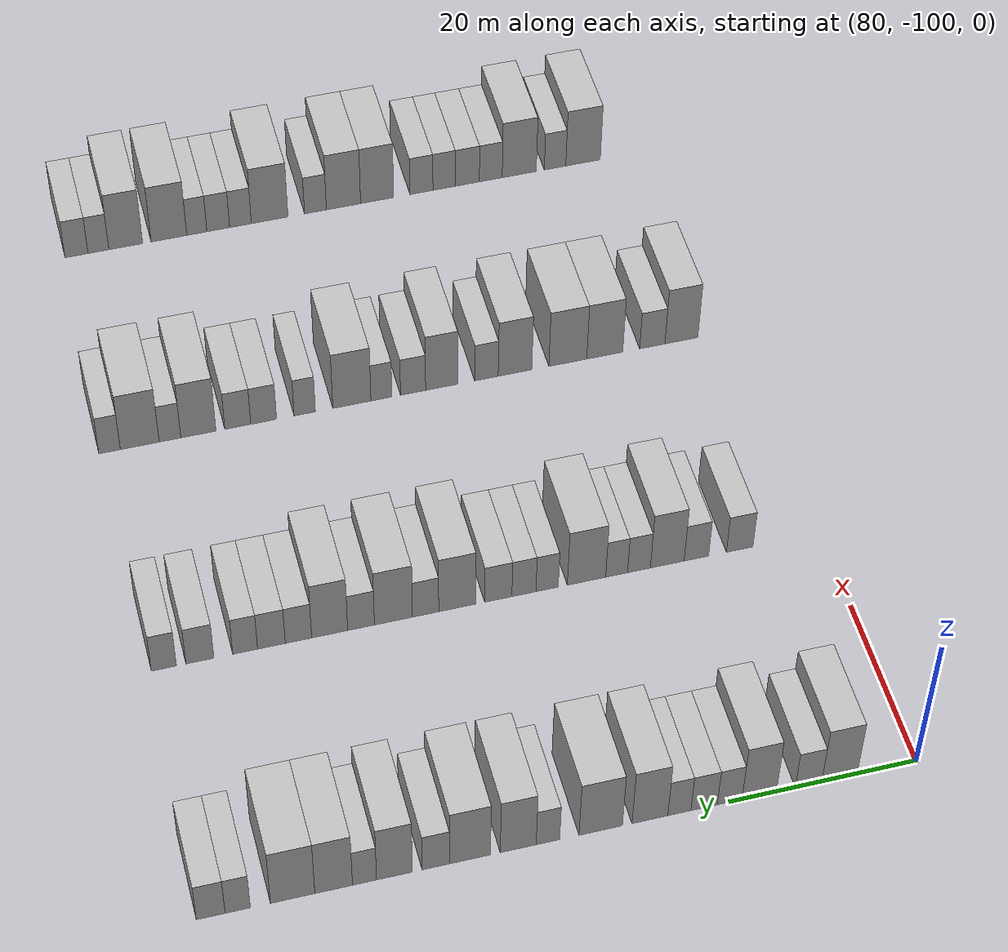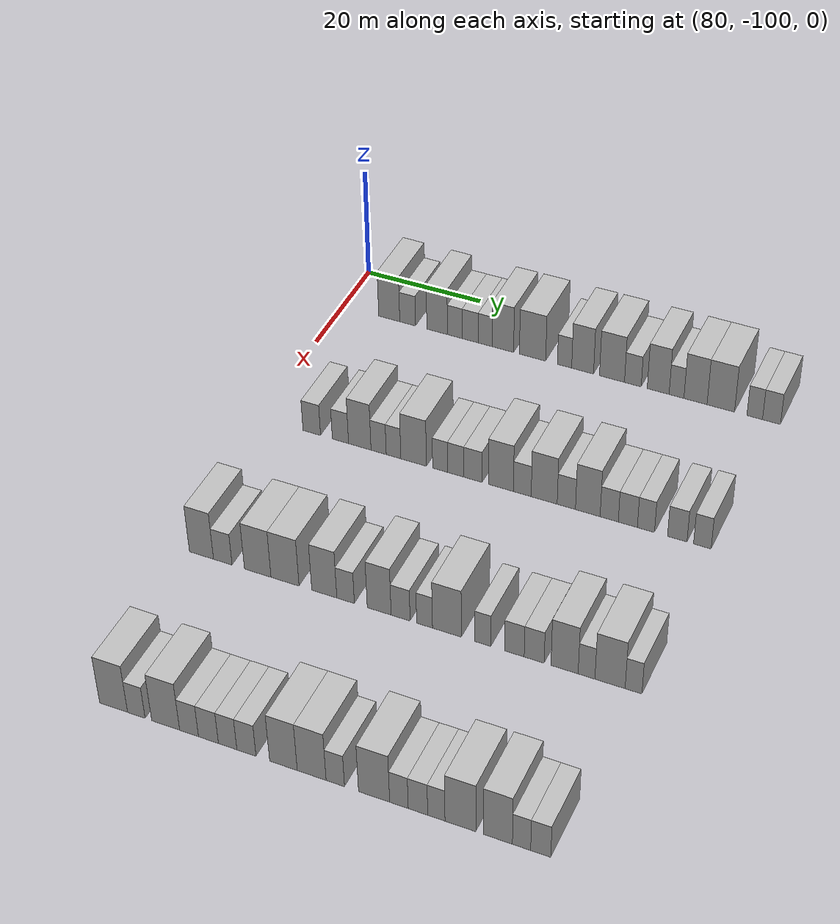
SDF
<sdf version="1.6">
 <world name="default">
  <model name="building_529">
   <static>1</static>
   <pose>85.0000 -91.7320 0 0.000000 0.000000 0.000000</pose>
   <link name="link">
    <pose>0 0 4.50 0 0 0</pose>
    <collision name="collision"><geometry><box><size>10.0000 3.7581 9.0000</size></box></geometry></collision>
    <visual name="visual">
     <cast_shadows>0</cast_shadows>
     <geometry><box><size>10.0000 3.7581 9.0000</size></box></geometry>
     <material>
      <script>
       <uri>model://HANNAS_wall/materials/scripts</uri>
       <uri>model://HANNAS_wall/materials/textures</uri>
       <name>vrc/HANNAS_wall</name>
      </script>
     </material>
    </visual>
   </link>
  </model>
  <model name="building_530">
   <static>1</static>
   <pose>85.0000 -88.4442 0 0.000000 0.000000 0.000000</pose>
   <link name="link">
    <pose>0 0 3.00 0 0 0</pose>
    <collision name="collision"><geometry><box><size>10.0000 2.8176 6.0000</size></box></geometry></collision>
    <visual name="visual">
     <cast_shadows>0</cast_shadows>
     <geometry><box><size>10.0000 2.8176 6.0000</size></box></geometry>
     <material>
      <script>
       <uri>model://HANNAS_wall/materials/scripts</uri>
       <uri>model://HANNAS_wall/materials/textures</uri>
       <name>vrc/HANNAS_wall</name>
      </script>
     </material>
    </visual>
   </link>
  </model>
  <model name="building_531">
   <static>1</static>
   <pose>85.0000 -83.2186 0 0.000000 0.000000 0.000000</pose>
   <link name="link">
    <pose>0 0 4.50 0 0 0</pose>
    <collision name="collision"><geometry><box><size>10.0000 3.6337 9.0000</size></box></geometry></collision>
    <visual name="visual">
     <cast_shadows>0</cast_shadows>
     <geometry><box><size>10.0000 3.6337 9.0000</size></box></geometry>
     <material>
      <script>
       <uri>model://HANNAS_wall/materials/scripts</uri>
       <uri>model://HANNAS_wall/materials/textures</uri>
       <name>vrc/HANNAS_wall</name>
      </script>
     </material>
    </visual>
   </link>
  </model>
  <model name="building_532">
   <static>1</static>
   <pose>85.0000 -80.1047 0 0.000000 0.000000 0.000000</pose>
   <link name="link">
    <pose>0 0 3.00 0 0 0</pose>
    <collision name="collision"><geometry><box><size>10.0000 2.5939 6.0000</size></box></geometry></collision>
    <visual name="visual">
     <cast_shadows>0</cast_shadows>
     <geometry><box><size>10.0000 2.5939 6.0000</size></box></geometry>
     <material>
      <script>
       <uri>model://HANNAS_wall/materials/scripts</uri>
       <uri>model://HANNAS_wall/materials/textures</uri>
       <name>vrc/HANNAS_wall</name>
      </script>
     </material>
    </visual>
   </link>
  </model>
  <model name="building_533">
   <static>1</static>
   <pose>85.0000 -77.4225 0 0.000000 0.000000 0.000000</pose>
   <link name="link">
    <pose>0 0 3.00 0 0 0</pose>
    <collision name="collision"><geometry><box><size>10.0000 2.7705 6.0000</size></box></geometry></collision>
    <visual name="visual">
     <cast_shadows>0</cast_shadows>
     <geometry><box><size>10.0000 2.7705 6.0000</size></box></geometry>
     <material>
      <script>
       <uri>model://HANNAS_wall/materials/scripts</uri>
       <uri>model://HANNAS_wall/materials/textures</uri>
       <name>vrc/HANNAS_wall</name>
      </script>
     </material>
    </visual>
   </link>
  </model>
  <model name="building_534">
   <static>1</static>
   <pose>85.0000 -74.8299 0 0.000000 0.000000 0.000000</pose>
   <link name="link">
    <pose>0 0 3.00 0 0 0</pose>
    <collision name="collision"><geometry><box><size>10.0000 2.4148 6.0000</size></box></geometry></collision>
    <visual name="visual">
     <cast_shadows>0</cast_shadows>
     <geometry><box><size>10.0000 2.4148 6.0000</size></box></geometry>
     <material>
      <script>
       <uri>model://HANNAS_wall/materials/scripts</uri>
       <uri>model://HANNAS_wall/materials/textures</uri>
       <name>vrc/HANNAS_wall</name>
      </script>
     </material>
    </visual>
   </link>
  </model>
  <model name="building_535">
   <static>1</static>
   <pose>85.0000 -71.7554 0 0.000000 0.000000 0.000000</pose>
   <link name="link">
    <pose>0 0 4.50 0 0 0</pose>
    <collision name="collision"><geometry><box><size>10.0000 3.7342 9.0000</size></box></geometry></collision>
    <visual name="visual">
     <cast_shadows>0</cast_shadows>
     <geometry><box><size>10.0000 3.7342 9.0000</size></box></geometry>
     <material>
      <script>
       <uri>model://HANNAS_wall/materials/scripts</uri>
       <uri>model://HANNAS_wall/materials/textures</uri>
       <name>vrc/HANNAS_wall</name>
      </script>
     </material>
    </visual>
   </link>
  </model>
  <model name="building_536">
   <static>1</static>
   <pose>85.0000 -66.6407 0 0.000000 0.000000 0.000000</pose>
   <link name="link">
    <pose>0 0 4.50 0 0 0</pose>
    <collision name="collision"><geometry><box><size>10.0000 4.4953 9.0000</size></box></geometry></collision>
    <visual name="visual">
     <cast_shadows>0</cast_shadows>
     <geometry><box><size>10.0000 4.4953 9.0000</size></box></geometry>
     <material>
      <script>
       <uri>model://HANNAS_wall/materials/scripts</uri>
       <uri>model://HANNAS_wall/materials/textures</uri>
       <name>vrc/HANNAS_wall</name>
      </script>
     </material>
    </visual>
   </link>
  </model>
  <model name="building_537">
   <static>1</static>
   <pose>85.0000 -61.1833 0 0.000000 0.000000 0.000000</pose>
   <link name="link">
    <pose>0 0 3.00 0 0 0</pose>
    <collision name="collision"><geometry><box><size>10.0000 2.4196 6.0000</size></box></geometry></collision>
    <visual name="visual">
     <cast_shadows>0</cast_shadows>
     <geometry><box><size>10.0000 2.4196 6.0000</size></box></geometry>
     <material>
      <script>
       <uri>model://HANNAS_wall/materials/scripts</uri>
       <uri>model://HANNAS_wall/materials/textures</uri>
       <name>vrc/HANNAS_wall</name>
      </script>
     </material>
    </visual>
   </link>
  </model>
  <model name="building_538">
   <static>1</static>
   <pose>85.0000 -58.1262 0 0.000000 0.000000 0.000000</pose>
   <link name="link">
    <pose>0 0 4.50 0 0 0</pose>
    <collision name="collision"><geometry><box><size>10.0000 3.6945 9.0000</size></box></geometry></collision>
    <visual name="visual">
     <cast_shadows>0</cast_shadows>
     <geometry><box><size>10.0000 3.6945 9.0000</size></box></geometry>
     <material>
      <script>
       <uri>model://HANNAS_wall/materials/scripts</uri>
       <uri>model://HANNAS_wall/materials/textures</uri>
       <name>vrc/HANNAS_wall</name>
      </script>
     </material>
    </visual>
   </link>
  </model>
  <model name="building_539">
   <static>1</static>
   <pose>85.0000 -53.1819 0 0.000000 0.000000 0.000000</pose>
   <link name="link">
    <pose>0 0 4.50 0 0 0</pose>
    <collision name="collision"><geometry><box><size>10.0000 4.1942 9.0000</size></box></geometry></collision>
    <visual name="visual">
     <cast_shadows>0</cast_shadows>
     <geometry><box><size>10.0000 4.1942 9.0000</size></box></geometry>
     <material>
      <script>
       <uri>model://HANNAS_wall/materials/scripts</uri>
       <uri>model://HANNAS_wall/materials/textures</uri>
       <name>vrc/HANNAS_wall</name>
      </script>
     </material>
    </visual>
   </link>
  </model>
  <model name="building_540">
   <static>1</static>
   <pose>85.0000 -49.6967 0 0.000000 0.000000 0.000000</pose>
   <link name="link">
    <pose>0 0 3.00 0 0 0</pose>
    <collision name="collision"><geometry><box><size>10.0000 2.7761 6.0000</size></box></geometry></collision>
    <visual name="visual">
     <cast_shadows>0</cast_shadows>
     <geometry><box><size>10.0000 2.7761 6.0000</size></box></geometry>
     <material>
      <script>
       <uri>model://HANNAS_wall/materials/scripts</uri>
       <uri>model://HANNAS_wall/materials/textures</uri>
       <name>vrc/HANNAS_wall</name>
      </script>
     </material>
    </visual>
   </link>
  </model>
  <model name="building_541">
   <static>1</static>
   <pose>85.0000 -45.4981 0 0.000000 0.000000 0.000000</pose>
   <link name="link">
    <pose>0 0 4.50 0 0 0</pose>
    <collision name="collision"><geometry><box><size>10.0000 3.6212 9.0000</size></box></geometry></collision>
    <visual name="visual">
     <cast_shadows>0</cast_shadows>
     <geometry><box><size>10.0000 3.6212 9.0000</size></box></geometry>
     <material>
      <script>
       <uri>model://HANNAS_wall/materials/scripts</uri>
       <uri>model://HANNAS_wall/materials/textures</uri>
       <name>vrc/HANNAS_wall</name>
      </script>
     </material>
    </visual>
   </link>
  </model>
  <model name="building_542">
   <static>1</static>
   <pose>85.0000 -42.4739 0 0.000000 0.000000 0.000000</pose>
   <link name="link">
    <pose>0 0 3.00 0 0 0</pose>
    <collision name="collision"><geometry><box><size>10.0000 2.4271 6.0000</size></box></geometry></collision>
    <visual name="visual">
     <cast_shadows>0</cast_shadows>
     <geometry><box><size>10.0000 2.4271 6.0000</size></box></geometry>
     <material>
      <script>
       <uri>model://HANNAS_wall/materials/scripts</uri>
       <uri>model://HANNAS_wall/materials/textures</uri>
       <name>vrc/HANNAS_wall</name>
      </script>
     </material>
    </visual>
   </link>
  </model>
  <model name="building_543">
   <static>1</static>
   <pose>85.0000 -39.3682 0 0.000000 0.000000 0.000000</pose>
   <link name="link">
    <pose>0 0 4.50 0 0 0</pose>
    <collision name="collision"><geometry><box><size>10.0000 3.7842 9.0000</size></box></geometry></collision>
    <visual name="visual">
     <cast_shadows>0</cast_shadows>
     <geometry><box><size>10.0000 3.7842 9.0000</size></box></geometry>
     <material>
      <script>
       <uri>model://HANNAS_wall/materials/scripts</uri>
       <uri>model://HANNAS_wall/materials/textures</uri>
       <name>vrc/HANNAS_wall</name>
      </script>
     </material>
    </visual>
   </link>
  </model>
  <model name="building_544">
   <static>1</static>
   <pose>85.0000 -35.2467 0 0.000000 0.000000 0.000000</pose>
   <link name="link">
    <pose>0 0 4.50 0 0 0</pose>
    <collision name="collision"><geometry><box><size>10.0000 4.4587 9.0000</size></box></geometry></collision>
    <visual name="visual">
     <cast_shadows>0</cast_shadows>
     <geometry><box><size>10.0000 4.4587 9.0000</size></box></geometry>
     <material>
      <script>
       <uri>model://HANNAS_wall/materials/scripts</uri>
       <uri>model://HANNAS_wall/materials/textures</uri>
       <name>vrc/HANNAS_wall</name>
      </script>
     </material>
    </visual>
   </link>
  </model>
  <model name="building_545">
   <static>1</static>
   <pose>85.0000 -29.7627 0 0.000000 0.000000 0.000000</pose>
   <link name="link">
    <pose>0 0 3.00 0 0 0</pose>
    <collision name="collision"><geometry><box><size>10.0000 2.5092 6.0000</size></box></geometry></collision>
    <visual name="visual">
     <cast_shadows>0</cast_shadows>
     <geometry><box><size>10.0000 2.5092 6.0000</size></box></geometry>
     <material>
      <script>
       <uri>model://HANNAS_wall/materials/scripts</uri>
       <uri>model://HANNAS_wall/materials/textures</uri>
       <name>vrc/HANNAS_wall</name>
      </script>
     </material>
    </visual>
   </link>
  </model>
  <model name="building_546">
   <static>1</static>
   <pose>85.0000 -27.0726 0 0.000000 0.000000 0.000000</pose>
   <link name="link">
    <pose>0 0 3.00 0 0 0</pose>
    <collision name="collision"><geometry><box><size>10.0000 2.8710 6.0000</size></box></geometry></collision>
    <visual name="visual">
     <cast_shadows>0</cast_shadows>
     <geometry><box><size>10.0000 2.8710 6.0000</size></box></geometry>
     <material>
      <script>
       <uri>model://HANNAS_wall/materials/scripts</uri>
       <uri>model://HANNAS_wall/materials/textures</uri>
       <name>vrc/HANNAS_wall</name>
      </script>
     </material>
    </visual>
   </link>
  </model>
  <model name="building_760">
   <static>1</static>
   <pose>115.0000 -90.8411 0 0.000000 0.000000 0.000000</pose>
   <link name="link">
    <pose>0 0 3.00 0 0 0</pose>
    <collision name="collision"><geometry><box><size>10.0000 2.9789 6.0000</size></box></geometry></collision>
    <visual name="visual">
     <cast_shadows>0</cast_shadows>
     <geometry><box><size>10.0000 2.9789 6.0000</size></box></geometry>
     <material>
      <script>
       <uri>model://HANNAS_wall/materials/scripts</uri>
       <uri>model://HANNAS_wall/materials/textures</uri>
       <name>vrc/HANNAS_wall</name>
      </script>
     </material>
    </visual>
   </link>
  </model>
  <model name="building_761">
   <static>1</static>
   <pose>115.0000 -85.9828 0 0.000000 0.000000 0.000000</pose>
   <link name="link">
    <pose>0 0 3.00 0 0 0</pose>
    <collision name="collision"><geometry><box><size>10.0000 2.7375 6.0000</size></box></geometry></collision>
    <visual name="visual">
     <cast_shadows>0</cast_shadows>
     <geometry><box><size>10.0000 2.7375 6.0000</size></box></geometry>
     <material>
      <script>
       <uri>model://HANNAS_wall/materials/scripts</uri>
       <uri>model://HANNAS_wall/materials/textures</uri>
       <name>vrc/HANNAS_wall</name>
      </script>
     </material>
    </visual>
   </link>
  </model>
  <model name="building_762">
   <static>1</static>
   <pose>115.0000 -82.7289 0 0.000000 0.000000 0.000000</pose>
   <link name="link">
    <pose>0 0 4.50 0 0 0</pose>
    <collision name="collision"><geometry><box><size>10.0000 3.7704 9.0000</size></box></geometry></collision>
    <visual name="visual">
     <cast_shadows>0</cast_shadows>
     <geometry><box><size>10.0000 3.7704 9.0000</size></box></geometry>
     <material>
      <script>
       <uri>model://HANNAS_wall/materials/scripts</uri>
       <uri>model://HANNAS_wall/materials/textures</uri>
       <name>vrc/HANNAS_wall</name>
      </script>
     </material>
    </visual>
   </link>
  </model>
  <model name="building_763">
   <static>1</static>
   <pose>115.0000 -79.5752 0 0.000000 0.000000 0.000000</pose>
   <link name="link">
    <pose>0 0 3.00 0 0 0</pose>
    <collision name="collision"><geometry><box><size>10.0000 2.5368 6.0000</size></box></geometry></collision>
    <visual name="visual">
     <cast_shadows>0</cast_shadows>
     <geometry><box><size>10.0000 2.5368 6.0000</size></box></geometry>
     <material>
      <script>
       <uri>model://HANNAS_wall/materials/scripts</uri>
       <uri>model://HANNAS_wall/materials/textures</uri>
       <name>vrc/HANNAS_wall</name>
      </script>
     </material>
    </visual>
   </link>
  </model>
  <model name="building_764">
   <static>1</static>
   <pose>115.0000 -77.0930 0 0.000000 0.000000 0.000000</pose>
   <link name="link">
    <pose>0 0 3.00 0 0 0</pose>
    <collision name="collision"><geometry><box><size>10.0000 2.4277 6.0000</size></box></geometry></collision>
    <visual name="visual">
     <cast_shadows>0</cast_shadows>
     <geometry><box><size>10.0000 2.4277 6.0000</size></box></geometry>
     <material>
      <script>
       <uri>model://HANNAS_wall/materials/scripts</uri>
       <uri>model://HANNAS_wall/materials/textures</uri>
       <name>vrc/HANNAS_wall</name>
      </script>
     </material>
    </visual>
   </link>
  </model>
  <model name="building_765">
   <static>1</static>
   <pose>115.0000 -73.7599 0 0.000000 0.000000 0.000000</pose>
   <link name="link">
    <pose>0 0 4.50 0 0 0</pose>
    <collision name="collision"><geometry><box><size>10.0000 4.2385 9.0000</size></box></geometry></collision>
    <visual name="visual">
     <cast_shadows>0</cast_shadows>
     <geometry><box><size>10.0000 4.2385 9.0000</size></box></geometry>
     <material>
      <script>
       <uri>model://HANNAS_wall/materials/scripts</uri>
       <uri>model://HANNAS_wall/materials/textures</uri>
       <name>vrc/HANNAS_wall</name>
      </script>
     </material>
    </visual>
   </link>
  </model>
  <model name="building_766">
   <static>1</static>
   <pose>115.0000 -69.4088 0 0.000000 0.000000 0.000000</pose>
   <link name="link">
    <pose>0 0 3.00 0 0 0</pose>
    <collision name="collision"><geometry><box><size>10.0000 2.4636 6.0000</size></box></geometry></collision>
    <visual name="visual">
     <cast_shadows>0</cast_shadows>
     <geometry><box><size>10.0000 2.4636 6.0000</size></box></geometry>
     <material>
      <script>
       <uri>model://HANNAS_wall/materials/scripts</uri>
       <uri>model://HANNAS_wall/materials/textures</uri>
       <name>vrc/HANNAS_wall</name>
      </script>
     </material>
    </visual>
   </link>
  </model>
  <model name="building_767">
   <static>1</static>
   <pose>115.0000 -66.8593 0 0.000000 0.000000 0.000000</pose>
   <link name="link">
    <pose>0 0 3.00 0 0 0</pose>
    <collision name="collision"><geometry><box><size>10.0000 2.6355 6.0000</size></box></geometry></collision>
    <visual name="visual">
     <cast_shadows>0</cast_shadows>
     <geometry><box><size>10.0000 2.6355 6.0000</size></box></geometry>
     <material>
      <script>
       <uri>model://HANNAS_wall/materials/scripts</uri>
       <uri>model://HANNAS_wall/materials/textures</uri>
       <name>vrc/HANNAS_wall</name>
      </script>
     </material>
    </visual>
   </link>
  </model>
  <model name="building_768">
   <static>1</static>
   <pose>115.0000 -64.0522 0 0.000000 0.000000 0.000000</pose>
   <link name="link">
    <pose>0 0 3.00 0 0 0</pose>
    <collision name="collision"><geometry><box><size>10.0000 2.9787 6.0000</size></box></geometry></collision>
    <visual name="visual">
     <cast_shadows>0</cast_shadows>
     <geometry><box><size>10.0000 2.9787 6.0000</size></box></geometry>
     <material>
      <script>
       <uri>model://HANNAS_wall/materials/scripts</uri>
       <uri>model://HANNAS_wall/materials/textures</uri>
       <name>vrc/HANNAS_wall</name>
      </script>
     </material>
    </visual>
   </link>
  </model>
  <model name="building_769">
   <static>1</static>
   <pose>115.0000 -59.5553 0 0.000000 0.000000 0.000000</pose>
   <link name="link">
    <pose>0 0 4.50 0 0 0</pose>
    <collision name="collision"><geometry><box><size>10.0000 4.0150 9.0000</size></box></geometry></collision>
    <visual name="visual">
     <cast_shadows>0</cast_shadows>
     <geometry><box><size>10.0000 4.0150 9.0000</size></box></geometry>
     <material>
      <script>
       <uri>model://HANNAS_wall/materials/scripts</uri>
       <uri>model://HANNAS_wall/materials/textures</uri>
       <name>vrc/HANNAS_wall</name>
      </script>
     </material>
    </visual>
   </link>
  </model>
  <model name="building_770">
   <static>1</static>
   <pose>115.0000 -56.1257 0 0.000000 0.000000 0.000000</pose>
   <link name="link">
    <pose>0 0 3.00 0 0 0</pose>
    <collision name="collision"><geometry><box><size>10.0000 2.8443 6.0000</size></box></geometry></collision>
    <visual name="visual">
     <cast_shadows>0</cast_shadows>
     <geometry><box><size>10.0000 2.8443 6.0000</size></box></geometry>
     <material>
      <script>
       <uri>model://HANNAS_wall/materials/scripts</uri>
       <uri>model://HANNAS_wall/materials/textures</uri>
       <name>vrc/HANNAS_wall</name>
      </script>
     </material>
    </visual>
   </link>
  </model>
  <model name="building_771">
   <static>1</static>
   <pose>115.0000 -52.6436 0 0.000000 0.000000 0.000000</pose>
   <link name="link">
    <pose>0 0 4.50 0 0 0</pose>
    <collision name="collision"><geometry><box><size>10.0000 4.1198 9.0000</size></box></geometry></collision>
    <visual name="visual">
     <cast_shadows>0</cast_shadows>
     <geometry><box><size>10.0000 4.1198 9.0000</size></box></geometry>
     <material>
      <script>
       <uri>model://HANNAS_wall/materials/scripts</uri>
       <uri>model://HANNAS_wall/materials/textures</uri>
       <name>vrc/HANNAS_wall</name>
      </script>
     </material>
    </visual>
   </link>
  </model>
  <model name="building_772">
   <static>1</static>
   <pose>115.0000 -49.1406 0 0.000000 0.000000 0.000000</pose>
   <link name="link">
    <pose>0 0 3.00 0 0 0</pose>
    <collision name="collision"><geometry><box><size>10.0000 2.8863 6.0000</size></box></geometry></collision>
    <visual name="visual">
     <cast_shadows>0</cast_shadows>
     <geometry><box><size>10.0000 2.8863 6.0000</size></box></geometry>
     <material>
      <script>
       <uri>model://HANNAS_wall/materials/scripts</uri>
       <uri>model://HANNAS_wall/materials/textures</uri>
       <name>vrc/HANNAS_wall</name>
      </script>
     </material>
    </visual>
   </link>
  </model>
  <model name="building_773">
   <static>1</static>
   <pose>115.0000 -45.7630 0 0.000000 0.000000 0.000000</pose>
   <link name="link">
    <pose>0 0 4.50 0 0 0</pose>
    <collision name="collision"><geometry><box><size>10.0000 3.8689 9.0000</size></box></geometry></collision>
    <visual name="visual">
     <cast_shadows>0</cast_shadows>
     <geometry><box><size>10.0000 3.8689 9.0000</size></box></geometry>
     <material>
      <script>
       <uri>model://HANNAS_wall/materials/scripts</uri>
       <uri>model://HANNAS_wall/materials/textures</uri>
       <name>vrc/HANNAS_wall</name>
      </script>
     </material>
    </visual>
   </link>
  </model>
  <model name="building_774">
   <static>1</static>
   <pose>115.0000 -42.4151 0 0.000000 0.000000 0.000000</pose>
   <link name="link">
    <pose>0 0 3.00 0 0 0</pose>
    <collision name="collision"><geometry><box><size>10.0000 2.8269 6.0000</size></box></geometry></collision>
    <visual name="visual">
     <cast_shadows>0</cast_shadows>
     <geometry><box><size>10.0000 2.8269 6.0000</size></box></geometry>
     <material>
      <script>
       <uri>model://HANNAS_wall/materials/scripts</uri>
       <uri>model://HANNAS_wall/materials/textures</uri>
       <name>vrc/HANNAS_wall</name>
      </script>
     </material>
    </visual>
   </link>
  </model>
  <model name="building_775">
   <static>1</static>
   <pose>115.0000 -39.5215 0 0.000000 0.000000 0.000000</pose>
   <link name="link">
    <pose>0 0 3.00 0 0 0</pose>
    <collision name="collision"><geometry><box><size>10.0000 2.9603 6.0000</size></box></geometry></collision>
    <visual name="visual">
     <cast_shadows>0</cast_shadows>
     <geometry><box><size>10.0000 2.9603 6.0000</size></box></geometry>
     <material>
      <script>
       <uri>model://HANNAS_wall/materials/scripts</uri>
       <uri>model://HANNAS_wall/materials/textures</uri>
       <name>vrc/HANNAS_wall</name>
      </script>
     </material>
    </visual>
   </link>
  </model>
  <model name="building_776">
   <static>1</static>
   <pose>115.0000 -36.7215 0 0.000000 0.000000 0.000000</pose>
   <link name="link">
    <pose>0 0 3.00 0 0 0</pose>
    <collision name="collision"><geometry><box><size>10.0000 2.6396 6.0000</size></box></geometry></collision>
    <visual name="visual">
     <cast_shadows>0</cast_shadows>
     <geometry><box><size>10.0000 2.6396 6.0000</size></box></geometry>
     <material>
      <script>
       <uri>model://HANNAS_wall/materials/scripts</uri>
       <uri>model://HANNAS_wall/materials/textures</uri>
       <name>vrc/HANNAS_wall</name>
      </script>
     </material>
    </visual>
   </link>
  </model>
  <model name="building_777">
   <static>1</static>
   <pose>115.0000 -31.9163 0 0.000000 0.000000 0.000000</pose>
   <link name="link">
    <pose>0 0 3.00 0 0 0</pose>
    <collision name="collision"><geometry><box><size>10.0000 2.9708 6.0000</size></box></geometry></collision>
    <visual name="visual">
     <cast_shadows>0</cast_shadows>
     <geometry><box><size>10.0000 2.9708 6.0000</size></box></geometry>
     <material>
      <script>
       <uri>model://HANNAS_wall/materials/scripts</uri>
       <uri>model://HANNAS_wall/materials/textures</uri>
       <name>vrc/HANNAS_wall</name>
      </script>
     </material>
    </visual>
   </link>
  </model>
  <model name="building_778">
   <static>1</static>
   <pose>115.0000 -28.1006 0 0.000000 0.000000 0.000000</pose>
   <link name="link">
    <pose>0 0 3.00 0 0 0</pose>
    <collision name="collision"><geometry><box><size>10.0000 2.6606 6.0000</size></box></geometry></collision>
    <visual name="visual">
     <cast_shadows>0</cast_shadows>
     <geometry><box><size>10.0000 2.6606 6.0000</size></box></geometry>
     <material>
      <script>
       <uri>model://HANNAS_wall/materials/scripts</uri>
       <uri>model://HANNAS_wall/materials/textures</uri>
       <name>vrc/HANNAS_wall</name>
      </script>
     </material>
    </visual>
   </link>
  </model>
  <model name="building_992">
   <static>1</static>
   <pose>145.0000 -93.5688 0 0.000000 0.000000 0.000000</pose>
   <link name="link">
    <pose>0 0 4.50 0 0 0</pose>
    <collision name="collision"><geometry><box><size>10.0000 3.9059 9.0000</size></box></geometry></collision>
    <visual name="visual">
     <cast_shadows>0</cast_shadows>
     <geometry><box><size>10.0000 3.9059 9.0000</size></box></geometry>
     <material>
      <script>
       <uri>model://HANNAS_wall/materials/scripts</uri>
       <uri>model://HANNAS_wall/materials/textures</uri>
       <name>vrc/HANNAS_wall</name>
      </script>
     </material>
    </visual>
   </link>
  </model>
  <model name="building_993">
   <static>1</static>
   <pose>145.0000 -90.1165 0 0.000000 0.000000 0.000000</pose>
   <link name="link">
    <pose>0 0 3.00 0 0 0</pose>
    <collision name="collision"><geometry><box><size>10.0000 2.9988 6.0000</size></box></geometry></collision>
    <visual name="visual">
     <cast_shadows>0</cast_shadows>
     <geometry><box><size>10.0000 2.9988 6.0000</size></box></geometry>
     <material>
      <script>
       <uri>model://HANNAS_wall/materials/scripts</uri>
       <uri>model://HANNAS_wall/materials/textures</uri>
       <name>vrc/HANNAS_wall</name>
      </script>
     </material>
    </visual>
   </link>
  </model>
  <model name="building_994">
   <static>1</static>
   <pose>145.0000 -84.4973 0 0.000000 0.000000 0.000000</pose>
   <link name="link">
    <pose>0 0 4.50 0 0 0</pose>
    <collision name="collision"><geometry><box><size>10.0000 4.2395 9.0000</size></box></geometry></collision>
    <visual name="visual">
     <cast_shadows>0</cast_shadows>
     <geometry><box><size>10.0000 4.2395 9.0000</size></box></geometry>
     <material>
      <script>
       <uri>model://HANNAS_wall/materials/scripts</uri>
       <uri>model://HANNAS_wall/materials/textures</uri>
       <name>vrc/HANNAS_wall</name>
      </script>
     </material>
    </visual>
   </link>
  </model>
  <model name="building_995">
   <static>1</static>
   <pose>145.0000 -80.1543 0 0.000000 0.000000 0.000000</pose>
   <link name="link">
    <pose>0 0 4.50 0 0 0</pose>
    <collision name="collision"><geometry><box><size>10.0000 4.4466 9.0000</size></box></geometry></collision>
    <visual name="visual">
     <cast_shadows>0</cast_shadows>
     <geometry><box><size>10.0000 4.4466 9.0000</size></box></geometry>
     <material>
      <script>
       <uri>model://HANNAS_wall/materials/scripts</uri>
       <uri>model://HANNAS_wall/materials/textures</uri>
       <name>vrc/HANNAS_wall</name>
      </script>
     </material>
    </visual>
   </link>
  </model>
  <model name="building_996">
   <static>1</static>
   <pose>145.0000 -73.9681 0 0.000000 0.000000 0.000000</pose>
   <link name="link">
    <pose>0 0 4.50 0 0 0</pose>
    <collision name="collision"><geometry><box><size>10.0000 3.9258 9.0000</size></box></geometry></collision>
    <visual name="visual">
     <cast_shadows>0</cast_shadows>
     <geometry><box><size>10.0000 3.9258 9.0000</size></box></geometry>
     <material>
      <script>
       <uri>model://HANNAS_wall/materials/scripts</uri>
       <uri>model://HANNAS_wall/materials/textures</uri>
       <name>vrc/HANNAS_wall</name>
      </script>
     </material>
    </visual>
   </link>
  </model>
  <model name="building_997">
   <static>1</static>
   <pose>145.0000 -70.6411 0 0.000000 0.000000 0.000000</pose>
   <link name="link">
    <pose>0 0 3.00 0 0 0</pose>
    <collision name="collision"><geometry><box><size>10.0000 2.7281 6.0000</size></box></geometry></collision>
    <visual name="visual">
     <cast_shadows>0</cast_shadows>
     <geometry><box><size>10.0000 2.7281 6.0000</size></box></geometry>
     <material>
      <script>
       <uri>model://HANNAS_wall/materials/scripts</uri>
       <uri>model://HANNAS_wall/materials/textures</uri>
       <name>vrc/HANNAS_wall</name>
      </script>
     </material>
    </visual>
   </link>
  </model>
  <model name="building_998">
   <static>1</static>
   <pose>145.0000 -65.4341 0 0.000000 0.000000 0.000000</pose>
   <link name="link">
    <pose>0 0 4.50 0 0 0</pose>
    <collision name="collision"><geometry><box><size>10.0000 3.6860 9.0000</size></box></geometry></collision>
    <visual name="visual">
     <cast_shadows>0</cast_shadows>
     <geometry><box><size>10.0000 3.6860 9.0000</size></box></geometry>
     <material>
      <script>
       <uri>model://HANNAS_wall/materials/scripts</uri>
       <uri>model://HANNAS_wall/materials/textures</uri>
       <name>vrc/HANNAS_wall</name>
      </script>
     </material>
    </visual>
   </link>
  </model>
  <model name="building_999">
   <static>1</static>
   <pose>145.0000 -62.1410 0 0.000000 0.000000 0.000000</pose>
   <link name="link">
    <pose>0 0 3.00 0 0 0</pose>
    <collision name="collision"><geometry><box><size>10.0000 2.9002 6.0000</size></box></geometry></collision>
    <visual name="visual">
     <cast_shadows>0</cast_shadows>
     <geometry><box><size>10.0000 2.9002 6.0000</size></box></geometry>
     <material>
      <script>
       <uri>model://HANNAS_wall/materials/scripts</uri>
       <uri>model://HANNAS_wall/materials/textures</uri>
       <name>vrc/HANNAS_wall</name>
      </script>
     </material>
    </visual>
   </link>
  </model>
  <model name="building_1000">
   <static>1</static>
   <pose>145.0000 -58.4883 0 0.000000 0.000000 0.000000</pose>
   <link name="link">
    <pose>0 0 3.00 0 0 0</pose>
    <collision name="collision"><geometry><box><size>10.0000 2.4051 6.0000</size></box></geometry></collision>
    <visual name="visual">
     <cast_shadows>0</cast_shadows>
     <geometry><box><size>10.0000 2.4051 6.0000</size></box></geometry>
     <material>
      <script>
       <uri>model://HANNAS_wall/materials/scripts</uri>
       <uri>model://HANNAS_wall/materials/textures</uri>
       <name>vrc/HANNAS_wall</name>
      </script>
     </material>
    </visual>
   </link>
  </model>
  <model name="building_1001">
   <static>1</static>
   <pose>145.0000 -55.1047 0 0.000000 0.000000 0.000000</pose>
   <link name="link">
    <pose>0 0 4.50 0 0 0</pose>
    <collision name="collision"><geometry><box><size>10.0000 4.3622 9.0000</size></box></geometry></collision>
    <visual name="visual">
     <cast_shadows>0</cast_shadows>
     <geometry><box><size>10.0000 4.3622 9.0000</size></box></geometry>
     <material>
      <script>
       <uri>model://HANNAS_wall/materials/scripts</uri>
       <uri>model://HANNAS_wall/materials/textures</uri>
       <name>vrc/HANNAS_wall</name>
      </script>
     </material>
    </visual>
   </link>
  </model>
  <model name="building_1002">
   <static>1</static>
   <pose>145.0000 -49.7108 0 0.000000 0.000000 0.000000</pose>
   <link name="link">
    <pose>0 0 3.00 0 0 0</pose>
    <collision name="collision"><geometry><box><size>10.0000 2.4255 6.0000</size></box></geometry></collision>
    <visual name="visual">
     <cast_shadows>0</cast_shadows>
     <geometry><box><size>10.0000 2.4255 6.0000</size></box></geometry>
     <material>
      <script>
       <uri>model://HANNAS_wall/materials/scripts</uri>
       <uri>model://HANNAS_wall/materials/textures</uri>
       <name>vrc/HANNAS_wall</name>
      </script>
     </material>
    </visual>
   </link>
  </model>
  <model name="building_1003">
   <static>1</static>
   <pose>145.0000 -45.0348 0 0.000000 0.000000 0.000000</pose>
   <link name="link">
    <pose>0 0 3.00 0 0 0</pose>
    <collision name="collision"><geometry><box><size>10.0000 2.9264 6.0000</size></box></geometry></collision>
    <visual name="visual">
     <cast_shadows>0</cast_shadows>
     <geometry><box><size>10.0000 2.9264 6.0000</size></box></geometry>
     <material>
      <script>
       <uri>model://HANNAS_wall/materials/scripts</uri>
       <uri>model://HANNAS_wall/materials/textures</uri>
       <name>vrc/HANNAS_wall</name>
      </script>
     </material>
    </visual>
   </link>
  </model>
  <model name="building_1004">
   <static>1</static>
   <pose>145.0000 -42.1041 0 0.000000 0.000000 0.000000</pose>
   <link name="link">
    <pose>0 0 3.00 0 0 0</pose>
    <collision name="collision"><geometry><box><size>10.0000 2.9349 6.0000</size></box></geometry></collision>
    <visual name="visual">
     <cast_shadows>0</cast_shadows>
     <geometry><box><size>10.0000 2.9349 6.0000</size></box></geometry>
     <material>
      <script>
       <uri>model://HANNAS_wall/materials/scripts</uri>
       <uri>model://HANNAS_wall/materials/textures</uri>
       <name>vrc/HANNAS_wall</name>
      </script>
     </material>
    </visual>
   </link>
  </model>
  <model name="building_1005">
   <static>1</static>
   <pose>145.0000 -37.6564 0 0.000000 0.000000 0.000000</pose>
   <link name="link">
    <pose>0 0 4.50 0 0 0</pose>
    <collision name="collision"><geometry><box><size>10.0000 3.9605 9.0000</size></box></geometry></collision>
    <visual name="visual">
     <cast_shadows>0</cast_shadows>
     <geometry><box><size>10.0000 3.9605 9.0000</size></box></geometry>
     <material>
      <script>
       <uri>model://HANNAS_wall/materials/scripts</uri>
       <uri>model://HANNAS_wall/materials/textures</uri>
       <name>vrc/HANNAS_wall</name>
      </script>
     </material>
    </visual>
   </link>
  </model>
  <model name="building_1006">
   <static>1</static>
   <pose>145.0000 -34.4596 0 0.000000 0.000000 0.000000</pose>
   <link name="link">
    <pose>0 0 3.00 0 0 0</pose>
    <collision name="collision"><geometry><box><size>10.0000 2.4330 6.0000</size></box></geometry></collision>
    <visual name="visual">
     <cast_shadows>0</cast_shadows>
     <geometry><box><size>10.0000 2.4330 6.0000</size></box></geometry>
     <material>
      <script>
       <uri>model://HANNAS_wall/materials/scripts</uri>
       <uri>model://HANNAS_wall/materials/textures</uri>
       <name>vrc/HANNAS_wall</name>
      </script>
     </material>
    </visual>
   </link>
  </model>
  <model name="building_1007">
   <static>1</static>
   <pose>145.0000 -31.0698 0 0.000000 0.000000 0.000000</pose>
   <link name="link">
    <pose>0 0 4.50 0 0 0</pose>
    <collision name="collision"><geometry><box><size>10.0000 4.3466 9.0000</size></box></geometry></collision>
    <visual name="visual">
     <cast_shadows>0</cast_shadows>
     <geometry><box><size>10.0000 4.3466 9.0000</size></box></geometry>
     <material>
      <script>
       <uri>model://HANNAS_wall/materials/scripts</uri>
       <uri>model://HANNAS_wall/materials/textures</uri>
       <name>vrc/HANNAS_wall</name>
      </script>
     </material>
    </visual>
   </link>
  </model>
  <model name="building_1008">
   <static>1</static>
   <pose>145.0000 -27.6933 0 0.000000 0.000000 0.000000</pose>
   <link name="link">
    <pose>0 0 3.00 0 0 0</pose>
    <collision name="collision"><geometry><box><size>10.0000 2.4065 6.0000</size></box></geometry></collision>
    <visual name="visual">
     <cast_shadows>0</cast_shadows>
     <geometry><box><size>10.0000 2.4065 6.0000</size></box></geometry>
     <material>
      <script>
       <uri>model://HANNAS_wall/materials/scripts</uri>
       <uri>model://HANNAS_wall/materials/textures</uri>
       <name>vrc/HANNAS_wall</name>
      </script>
     </material>
    </visual>
   </link>
  </model>
  <model name="building_1222">
   <static>1</static>
   <pose>175.0000 -90.4979 0 0.000000 0.000000 0.000000</pose>
   <link name="link">
    <pose>0 0 4.50 0 0 0</pose>
    <collision name="collision"><geometry><box><size>10.0000 4.2919 9.0000</size></box></geometry></collision>
    <visual name="visual">
     <cast_shadows>0</cast_shadows>
     <geometry><box><size>10.0000 4.2919 9.0000</size></box></geometry>
     <material>
      <script>
       <uri>model://HANNAS_wall/materials/scripts</uri>
       <uri>model://HANNAS_wall/materials/textures</uri>
       <name>vrc/HANNAS_wall</name>
      </script>
     </material>
    </visual>
   </link>
  </model>
  <model name="building_1223">
   <static>1</static>
   <pose>175.0000 -87.0206 0 0.000000 0.000000 0.000000</pose>
   <link name="link">
    <pose>0 0 3.00 0 0 0</pose>
    <collision name="collision"><geometry><box><size>10.0000 2.6627 6.0000</size></box></geometry></collision>
    <visual name="visual">
     <cast_shadows>0</cast_shadows>
     <geometry><box><size>10.0000 2.6627 6.0000</size></box></geometry>
     <material>
      <script>
       <uri>model://HANNAS_wall/materials/scripts</uri>
       <uri>model://HANNAS_wall/materials/textures</uri>
       <name>vrc/HANNAS_wall</name>
      </script>
     </material>
    </visual>
   </link>
  </model>
  <model name="building_1224">
   <static>1</static>
   <pose>175.0000 -82.5773 0 0.000000 0.000000 0.000000</pose>
   <link name="link">
    <pose>0 0 4.50 0 0 0</pose>
    <collision name="collision"><geometry><box><size>10.0000 4.2240 9.0000</size></box></geometry></collision>
    <visual name="visual">
     <cast_shadows>0</cast_shadows>
     <geometry><box><size>10.0000 4.2240 9.0000</size></box></geometry>
     <material>
      <script>
       <uri>model://HANNAS_wall/materials/scripts</uri>
       <uri>model://HANNAS_wall/materials/textures</uri>
       <name>vrc/HANNAS_wall</name>
      </script>
     </material>
    </visual>
   </link>
  </model>
  <model name="building_1225">
   <static>1</static>
   <pose>175.0000 -79.0571 0 0.000000 0.000000 0.000000</pose>
   <link name="link">
    <pose>0 0 3.00 0 0 0</pose>
    <collision name="collision"><geometry><box><size>10.0000 2.8164 6.0000</size></box></geometry></collision>
    <visual name="visual">
     <cast_shadows>0</cast_shadows>
     <geometry><box><size>10.0000 2.8164 6.0000</size></box></geometry>
     <material>
      <script>
       <uri>model://HANNAS_wall/materials/scripts</uri>
       <uri>model://HANNAS_wall/materials/textures</uri>
       <name>vrc/HANNAS_wall</name>
      </script>
     </material>
    </visual>
   </link>
  </model>
  <model name="building_1226">
   <static>1</static>
   <pose>175.0000 -76.1667 0 0.000000 0.000000 0.000000</pose>
   <link name="link">
    <pose>0 0 3.00 0 0 0</pose>
    <collision name="collision"><geometry><box><size>10.0000 2.9643 6.0000</size></box></geometry></collision>
    <visual name="visual">
     <cast_shadows>0</cast_shadows>
     <geometry><box><size>10.0000 2.9643 6.0000</size></box></geometry>
     <material>
      <script>
       <uri>model://HANNAS_wall/materials/scripts</uri>
       <uri>model://HANNAS_wall/materials/textures</uri>
       <name>vrc/HANNAS_wall</name>
      </script>
     </material>
    </visual>
   </link>
  </model>
  <model name="building_1227">
   <static>1</static>
   <pose>175.0000 -73.3168 0 0.000000 0.000000 0.000000</pose>
   <link name="link">
    <pose>0 0 3.00 0 0 0</pose>
    <collision name="collision"><geometry><box><size>10.0000 2.7353 6.0000</size></box></geometry></collision>
    <visual name="visual">
     <cast_shadows>0</cast_shadows>
     <geometry><box><size>10.0000 2.7353 6.0000</size></box></geometry>
     <material>
      <script>
       <uri>model://HANNAS_wall/materials/scripts</uri>
       <uri>model://HANNAS_wall/materials/textures</uri>
       <name>vrc/HANNAS_wall</name>
      </script>
     </material>
    </visual>
   </link>
  </model>
  <model name="building_1228">
   <static>1</static>
   <pose>175.0000 -70.5408 0 0.000000 0.000000 0.000000</pose>
   <link name="link">
    <pose>0 0 3.00 0 0 0</pose>
    <collision name="collision"><geometry><box><size>10.0000 2.8168 6.0000</size></box></geometry></collision>
    <visual name="visual">
     <cast_shadows>0</cast_shadows>
     <geometry><box><size>10.0000 2.8168 6.0000</size></box></geometry>
     <material>
      <script>
       <uri>model://HANNAS_wall/materials/scripts</uri>
       <uri>model://HANNAS_wall/materials/textures</uri>
       <name>vrc/HANNAS_wall</name>
      </script>
     </material>
    </visual>
   </link>
  </model>
  <model name="building_1229">
   <static>1</static>
   <pose>175.0000 -65.1241 0 0.000000 0.000000 0.000000</pose>
   <link name="link">
    <pose>0 0 4.50 0 0 0</pose>
    <collision name="collision"><geometry><box><size>10.0000 4.0165 9.0000</size></box></geometry></collision>
    <visual name="visual">
     <cast_shadows>0</cast_shadows>
     <geometry><box><size>10.0000 4.0165 9.0000</size></box></geometry>
     <material>
      <script>
       <uri>model://HANNAS_wall/materials/scripts</uri>
       <uri>model://HANNAS_wall/materials/textures</uri>
       <name>vrc/HANNAS_wall</name>
      </script>
     </material>
    </visual>
   </link>
  </model>
  <model name="building_1230">
   <static>1</static>
   <pose>175.0000 -61.0335 0 0.000000 0.000000 0.000000</pose>
   <link name="link">
    <pose>0 0 4.50 0 0 0</pose>
    <collision name="collision"><geometry><box><size>10.0000 4.1647 9.0000</size></box></geometry></collision>
    <visual name="visual">
     <cast_shadows>0</cast_shadows>
     <geometry><box><size>10.0000 4.1647 9.0000</size></box></geometry>
     <material>
      <script>
       <uri>model://HANNAS_wall/materials/scripts</uri>
       <uri>model://HANNAS_wall/materials/textures</uri>
       <name>vrc/HANNAS_wall</name>
      </script>
     </material>
    </visual>
   </link>
  </model>
  <model name="building_1231">
   <static>1</static>
   <pose>175.0000 -57.6319 0 0.000000 0.000000 0.000000</pose>
   <link name="link">
    <pose>0 0 3.00 0 0 0</pose>
    <collision name="collision"><geometry><box><size>10.0000 2.6384 6.0000</size></box></geometry></collision>
    <visual name="visual">
     <cast_shadows>0</cast_shadows>
     <geometry><box><size>10.0000 2.6384 6.0000</size></box></geometry>
     <material>
      <script>
       <uri>model://HANNAS_wall/materials/scripts</uri>
       <uri>model://HANNAS_wall/materials/textures</uri>
       <name>vrc/HANNAS_wall</name>
      </script>
     </material>
    </visual>
   </link>
  </model>
  <model name="building_1232">
   <static>1</static>
   <pose>175.0000 -52.1085 0 0.000000 0.000000 0.000000</pose>
   <link name="link">
    <pose>0 0 4.50 0 0 0</pose>
    <collision name="collision"><geometry><box><size>10.0000 4.4084 9.0000</size></box></geometry></collision>
    <visual name="visual">
     <cast_shadows>0</cast_shadows>
     <geometry><box><size>10.0000 4.4084 9.0000</size></box></geometry>
     <material>
      <script>
       <uri>model://HANNAS_wall/materials/scripts</uri>
       <uri>model://HANNAS_wall/materials/textures</uri>
       <name>vrc/HANNAS_wall</name>
      </script>
     </material>
    </visual>
   </link>
  </model>
  <model name="building_1233">
   <static>1</static>
   <pose>175.0000 -48.6004 0 0.000000 0.000000 0.000000</pose>
   <link name="link">
    <pose>0 0 3.00 0 0 0</pose>
    <collision name="collision"><geometry><box><size>10.0000 2.6078 6.0000</size></box></geometry></collision>
    <visual name="visual">
     <cast_shadows>0</cast_shadows>
     <geometry><box><size>10.0000 2.6078 6.0000</size></box></geometry>
     <material>
      <script>
       <uri>model://HANNAS_wall/materials/scripts</uri>
       <uri>model://HANNAS_wall/materials/textures</uri>
       <name>vrc/HANNAS_wall</name>
      </script>
     </material>
    </visual>
   </link>
  </model>
  <model name="building_1234">
   <static>1</static>
   <pose>175.0000 -45.9356 0 0.000000 0.000000 0.000000</pose>
   <link name="link">
    <pose>0 0 3.00 0 0 0</pose>
    <collision name="collision"><geometry><box><size>10.0000 2.7219 6.0000</size></box></geometry></collision>
    <visual name="visual">
     <cast_shadows>0</cast_shadows>
     <geometry><box><size>10.0000 2.7219 6.0000</size></box></geometry>
     <material>
      <script>
       <uri>model://HANNAS_wall/materials/scripts</uri>
       <uri>model://HANNAS_wall/materials/textures</uri>
       <name>vrc/HANNAS_wall</name>
      </script>
     </material>
    </visual>
   </link>
  </model>
  <model name="building_1235">
   <static>1</static>
   <pose>175.0000 -43.3732 0 0.000000 0.000000 0.000000</pose>
   <link name="link">
    <pose>0 0 3.00 0 0 0</pose>
    <collision name="collision"><geometry><box><size>10.0000 2.4028 6.0000</size></box></geometry></collision>
    <visual name="visual">
     <cast_shadows>0</cast_shadows>
     <geometry><box><size>10.0000 2.4028 6.0000</size></box></geometry>
     <material>
      <script>
       <uri>model://HANNAS_wall/materials/scripts</uri>
       <uri>model://HANNAS_wall/materials/textures</uri>
       <name>vrc/HANNAS_wall</name>
      </script>
     </material>
    </visual>
   </link>
  </model>
  <model name="building_1236">
   <static>1</static>
   <pose>175.0000 -40.0432 0 0.000000 0.000000 0.000000</pose>
   <link name="link">
    <pose>0 0 4.50 0 0 0</pose>
    <collision name="collision"><geometry><box><size>10.0000 4.2574 9.0000</size></box></geometry></collision>
    <visual name="visual">
     <cast_shadows>0</cast_shadows>
     <geometry><box><size>10.0000 4.2574 9.0000</size></box></geometry>
     <material>
      <script>
       <uri>model://HANNAS_wall/materials/scripts</uri>
       <uri>model://HANNAS_wall/materials/textures</uri>
       <name>vrc/HANNAS_wall</name>
      </script>
     </material>
    </visual>
   </link>
  </model>
  <model name="building_1237">
   <static>1</static>
   <pose>175.0000 -34.9170 0 0.000000 0.000000 0.000000</pose>
   <link name="link">
    <pose>0 0 4.50 0 0 0</pose>
    <collision name="collision"><geometry><box><size>10.0000 3.9950 9.0000</size></box></geometry></collision>
    <visual name="visual">
     <cast_shadows>0</cast_shadows>
     <geometry><box><size>10.0000 3.9950 9.0000</size></box></geometry>
     <material>
      <script>
       <uri>model://HANNAS_wall/materials/scripts</uri>
       <uri>model://HANNAS_wall/materials/textures</uri>
       <name>vrc/HANNAS_wall</name>
      </script>
     </material>
    </visual>
   </link>
  </model>
  <model name="building_1238">
   <static>1</static>
   <pose>175.0000 -31.6835 0 0.000000 0.000000 0.000000</pose>
   <link name="link">
    <pose>0 0 3.00 0 0 0</pose>
    <collision name="collision"><geometry><box><size>10.0000 2.4720 6.0000</size></box></geometry></collision>
    <visual name="visual">
     <cast_shadows>0</cast_shadows>
     <geometry><box><size>10.0000 2.4720 6.0000</size></box></geometry>
     <material>
      <script>
       <uri>model://HANNAS_wall/materials/scripts</uri>
       <uri>model://HANNAS_wall/materials/textures</uri>
       <name>vrc/HANNAS_wall</name>
      </script>
     </material>
    </visual>
   </link>
  </model>
  <model name="building_1239">
   <static>1</static>
   <pose>175.0000 -29.0901 0 0.000000 0.000000 0.000000</pose>
   <link name="link">
    <pose>0 0 3.00 0 0 0</pose>
    <collision name="collision"><geometry><box><size>10.0000 2.7148 6.0000</size></box></geometry></collision>
    <visual name="visual">
     <cast_shadows>0</cast_shadows>
     <geometry><box><size>10.0000 2.7148 6.0000</size></box></geometry>
     <material>
      <script>
       <uri>model://HANNAS_wall/materials/scripts</uri>
       <uri>model://HANNAS_wall/materials/textures</uri>
       <name>vrc/HANNAS_wall</name>
      </script>
     </material>
    </visual>
   </link>
  </model>
 </world>
</sdf>
